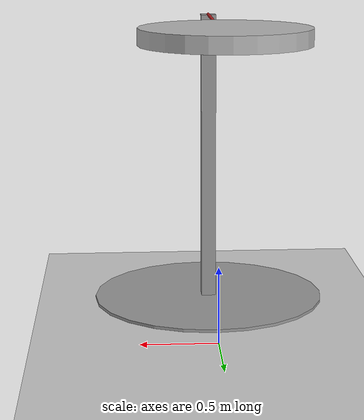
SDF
<sdf version="1.5">
 <world name="default">
  <light name="sun" type="directional">
   <pose>0 0 10 0 -0 0</pose>
   <diffuse>0.8 0.8 0.8 1</diffuse>
   <specular>0.2 0.2 0.2 1</specular>
   <attenuation>
    <range>1000</range>
    <constant>0.9</constant>
    <linear>0.01</linear>
    <quadratic>0.001</quadratic>
   </attenuation>
   <direction>-0.5 0.1 -0.9</direction>
  </light>
  <model name="ground_plane">
   <static>1</static>
   <link name="link">
    <collision name="collision">
     <geometry><plane><normal>0 0 1</normal><size>100 100</size></plane></geometry>
     <surface><friction><ode><mu>100</mu><mu2>50</mu2></ode></friction></surface>
    </collision>
    <visual name="visual">
     <cast_shadows>0</cast_shadows>
     <geometry><plane><normal>0 0 1</normal><size>100 100</size></plane></geometry>
     <material>
      <script><uri>file://media/materials/scripts/gazebo.material</uri><name>Gazebo/Grey</name></script>
     </material>
    </visual>
   </link>
  </model>
  <physics name="default_physics" default="0" type="ode">
   <max_step_size>0.001</max_step_size>
   <real_time_factor>1</real_time_factor>
   <real_time_update_rate>1000</real_time_update_rate>
   <gravity>0 0 -9.8</gravity>
   <magnetic_field>5.5645e-06 2.28758e-05 -4.23884e-05</magnetic_field>
  </physics>
  <scene><ambient>0.4 0.4 0.4 1</ambient><background>0.7 0.7 0.7 1</background><shadows>1</shadows></scene>
  <spherical_coordinates>
   <surface_model>EARTH_WGS84</surface_model>
   <latitude_deg>0</latitude_deg>
   <longitude_deg>0</longitude_deg>
   <elevation>0</elevation>
   <heading_deg>0</heading_deg>
  </spherical_coordinates>
  <model name="src16senseV1">
   <link name="base">
    <inertial>
     <mass>100</mass>
     <inertia><ixx>1</ixx><ixy>0</ixy><ixz>0</ixz><iyy>1</iyy><iyz>0</iyz><izz>1</izz></inertia>
    </inertial>
    <visual name="vis_plate_on_ground">
     <pose>0 0 0.01 0 -0 0</pose>
     <geometry><cylinder><radius>0.8</radius><length>0.02</length></cylinder></geometry>
     <material>
      <script><uri>file://media/materials/scripts/gazebo.material</uri><name>Gazebo/Grey</name></script>
     </material>
    </visual>
    <visual name="vis_pole">
     <pose>0 0 1 0 -0 0</pose>
     <geometry><box><size>0.1 0.1 2</size></box></geometry>
     <material>
      <script><uri>file://media/materials/scripts/gazebo.material</uri><name>Gazebo/Grey</name></script>
     </material>
    </visual>
    <collision name="col_plate_on_ground">
     <pose>0 0 0.01 0 -0 0</pose>
     <geometry><cylinder><radius>0.8</radius><length>0.02</length></cylinder></geometry>
    </collision>
    <collision name="col_pole">
     <pose>0 0 1 0 -0 0</pose>
     <geometry><box><size>0.1 0.1 2</size></box></geometry>
    </collision>
    <sensor name="camera" type="camera">
     <pose>0 0 2 0 -0 1.5707</pose>
     <camera name="__default__">
      <horizontal_fov>1.047</horizontal_fov>
      <image><width>320</width><height>240</height></image>
      <clip><near>0.1</near><far>2</far></clip>
     </camera>
     <always_on>1</always_on>
     <update_rate>30</update_rate>
     <visualize>1</visualize>
     <plugin name="camera_controller" filename="libgazebo_ros_camera.so">
      <alwaysOn>true</alwaysOn>
      <updateRate>0.0</updateRate>
      <cameraName>spinner/camera</cameraName>
      <imageTopicName>image_raw</imageTopicName>
      <cameraInfoTopicName>camera_info</cameraInfoTopicName>
      <frameName>camera_link</frameName>
      <hackBaseline>0.07</hackBaseline>
      <distortionK1>0.0</distortionK1>
      <distortionK2>0.0</distortionK2>
      <distortionK3>0.0</distortionK3>
      <distortionT1>0.0</distortionT1>
      <distortionT2>0.0</distortionT2>
     </plugin>
    </sensor>
   </link>
   <link name="arm0">
    <pose>0 0 2 0 -0 0</pose>
    <inertial>
     <inertia><ixx>1</ixx><ixy>0</ixy><ixz>0</ixz><iyy>1</iyy><iyz>0</iyz><izz>1</izz></inertia>
     <mass>1</mass>
    </inertial>
    <visual name="vis_cylinder">
     <geometry><box><size>0.01 0.01 0.01</size></box></geometry>
     <material>
      <script><uri>file://media/materials/scripts/gazebo.material</uri><name>Gazebo/Blue</name></script>
     </material>
    </visual>
    <collision name="col_cylinder"><geometry><box><size>0.01 0.01 0.01</size></box></geometry></collision>
   </link>
   <link name="arm1">
    <pose>0 0 2 -1.5708 0 0</pose>
    <inertial>
     <mass>0.1</mass>
     <pose>0 0 0.5 0 -0 0</pose>
     <inertia><ixx>1</ixx><ixy>0</ixy><ixz>0</ixz><iyy>1</iyy><iyz>0</iyz><izz>1</izz></inertia>
    </inertial>
    <visual name="vis_cylinder">
     <pose>0 0 0.5 0 -0 0</pose>
     <geometry><cylinder><radius>0.01</radius><length>1</length></cylinder></geometry>
     <material>
      <script><uri>file://media/materials/scripts/gazebo.material</uri><name>Gazebo/Red</name></script>
     </material>
    </visual>
    <collision name="col_cylinder">
     <pose>0 0 0.5 0 -0 0</pose>
     <geometry><cylinder><radius>0.01</radius><length>1</length></cylinder></geometry>
    </collision>
   </link>
   <link name="barrel">
    <pose>0 1.5 2 0 -0 0</pose>
    <inertial>
     <mass>0.1</mass>
     <inertia><ixx>1</ixx><ixy>0</ixy><ixz>0</ixz><iyy>1</iyy><iyz>0</iyz><izz>1</izz></inertia>
    </inertial>
    <collision name="collision">
     <geometry><cylinder><radius>0.5</radius><length>0.1</length></cylinder></geometry>
    </collision>
    <visual name="visual">
     <geometry><cylinder><radius>0.5</radius><length>0.1</length></cylinder></geometry>
     <material>
      <script>
       <uri>model://src16senseV1/materials/scripts</uri>
       <uri>model://src16senseV1/materials/textures</uri>
       <name>TexturedShape/Barrel</name>
      </script>
     </material>
    </visual>
   </link>
   <joint name="azimuth" type="revolute">
    <parent>base</parent>
    <child>arm0</child>
    <axis>
     <xyz>0 0 1</xyz>
     <use_parent_model_frame>0</use_parent_model_frame>
     <dynamics>
      <damping>5</damping>
      <spring_reference>0</spring_reference>
      <spring_stiffness>0</spring_stiffness>
     </dynamics>
     <limit><lower>-1</lower><upper>1</upper></limit>
    </axis>
   </joint>
   <joint name="elevation" type="revolute">
    <parent>arm0</parent>
    <child>arm1</child>
    <axis>
     <xyz>1 0 0</xyz>
     <use_parent_model_frame>0</use_parent_model_frame>
     <dynamics>
      <damping>5</damping>
      <spring_reference>0</spring_reference>
      <spring_stiffness>0</spring_stiffness>
     </dynamics>
     <limit><lower>-1</lower><upper>1</upper></limit>
    </axis>
   </joint>
   <joint name="spinner" type="revolute">
    <parent>arm1</parent>
    <child>barrel</child>
    <axis>
     <xyz>0 0 1</xyz>
     <use_parent_model_frame>0</use_parent_model_frame>
     <dynamics>
      <damping>5</damping>
      <spring_reference>0</spring_reference>
      <spring_stiffness>0</spring_stiffness>
     </dynamics>
     <limit><lower>-3.142</lower><upper>3.142</upper></limit>
    </axis>
   </joint>
   <pose>-0.000132 -0.999954 0 0 0 -0.001323</pose>
  </model>
  <light name="user_spot_light_0" type="spot">
   <pose>0 -0.944368 1.73007 1.85168 -0 0</pose>
   <diffuse>0.494118 0.494118 0.494118 1</diffuse>
   <specular>0.0941176 0.0941176 0.0941176 1</specular>
   <direction>0 0 -1</direction>
   <attenuation>
    <range>3</range>
    <constant>0.5</constant>
    <linear>0.01</linear>
    <quadratic>0.001</quadratic>
   </attenuation>
   <cast_shadows>0</cast_shadows>
   <spot><inner_angle>1.6</inner_angle><outer_angle>2</outer_angle><falloff>1</falloff></spot>
  </light>
 </world>
</sdf>
